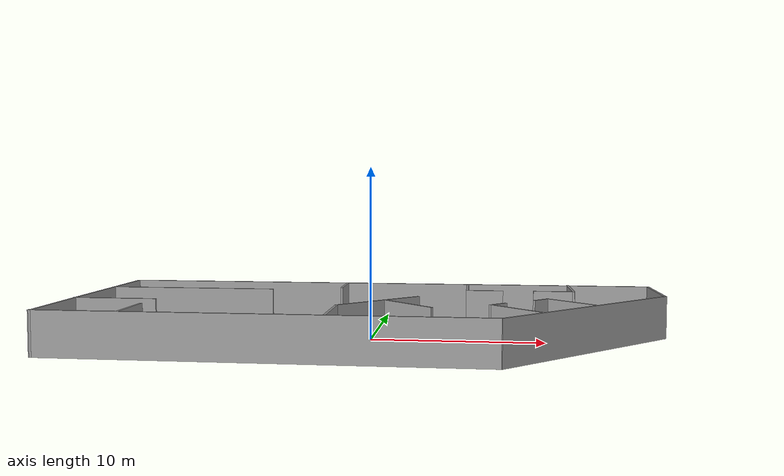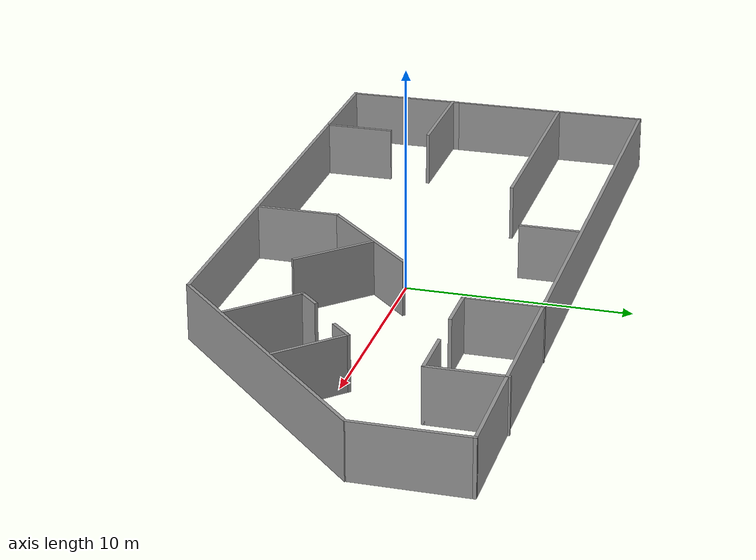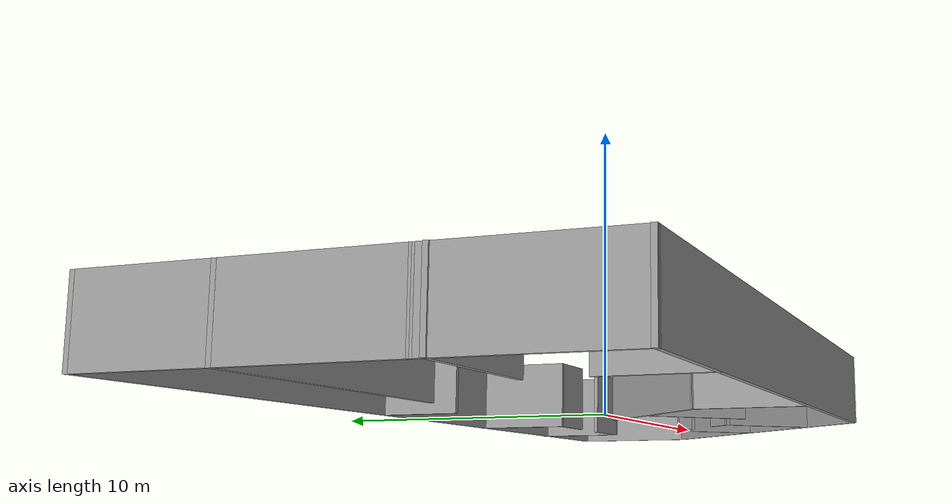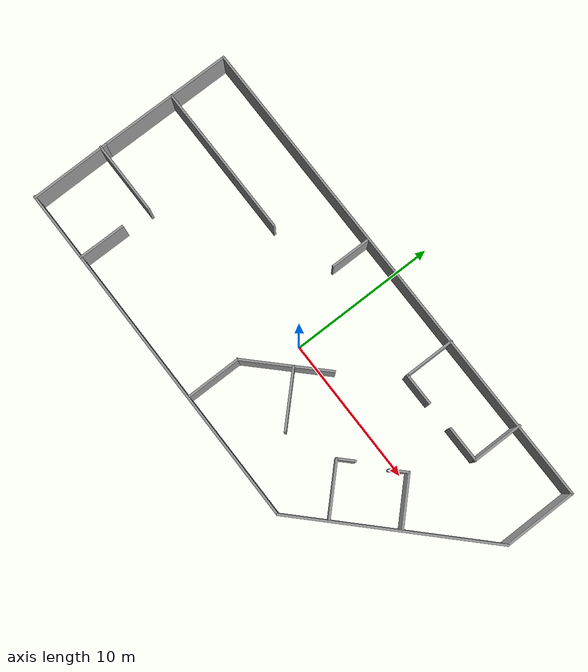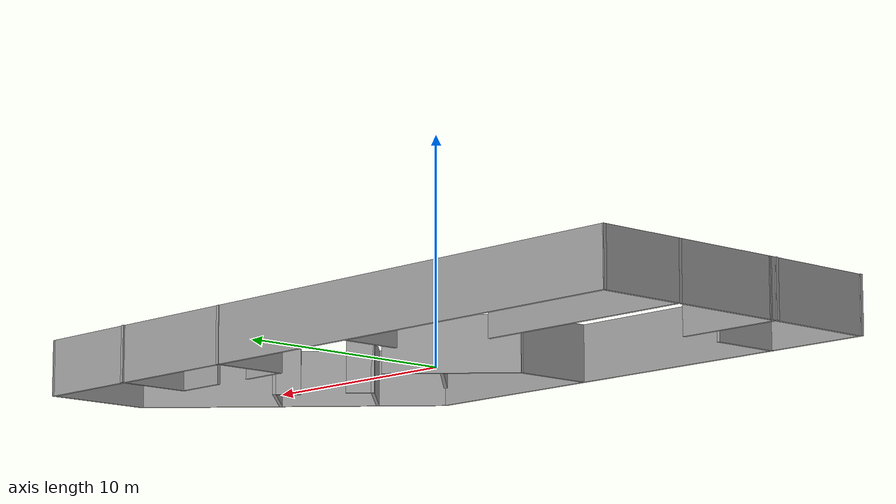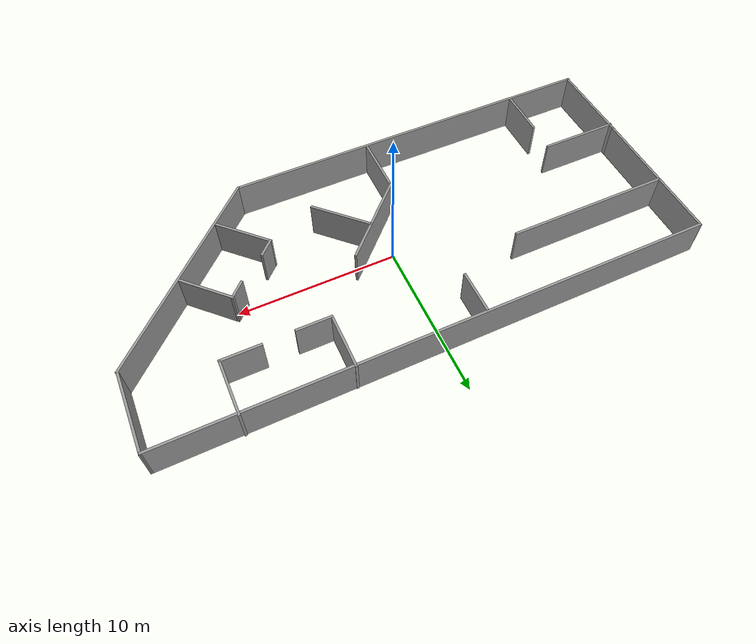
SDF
<?xml version='1.0'?>
<sdf version='1.7'>
  <model name='environment6'>
    <link name='Wall_12'>
      <pose>-17.0013 2.66938 0 0 -0 1.5708</pose>
      <self_collide>0</self_collide>
      <enable_wind>0</enable_wind>
      <kinematic>0</kinematic>
      <visual name='Wall_12_Visual'>
        <pose>0 0 1.25 0 -0 0</pose>
        <geometry>
          <box>
            <size>9.25 0.15 2.5</size>
          </box>
        </geometry>
        <material>
          <script>
            <uri>file://media/materials/scripts/gazebo.material</uri>
            <name>Gazebo/Grey</name>
          </script>
          <ambient>1 1 1 1</ambient>
          <shader type='pixel'/>
        </material>
        <meta>
          <layer>0</layer>
        </meta>
        <transparency>0</transparency>
        <cast_shadows>1</cast_shadows>
      </visual>
      <collision name='Wall_12_Collision'>
        <laser_retro>0</laser_retro>
        <max_contacts>10</max_contacts>
        <pose>0 0 1.25 0 -0 0</pose>
        <geometry>
          <box>
            <size>9.25 0.15 2.5</size>
          </box>
        </geometry>
        <surface>
          <friction>
            <ode>
              <mu>1</mu>
              <mu2>1</mu2>
              <fdir1>0 0 0</fdir1>
              <slip1>0</slip1>
              <slip2>0</slip2>
            </ode>
            <torsional>
              <coefficient>1</coefficient>
              <patch_radius>0</patch_radius>
              <surface_radius>0</surface_radius>
              <use_patch_radius>1</use_patch_radius>
              <ode>
                <slip>0</slip>
              </ode>
            </torsional>
          </friction>
          <bounce>
            <restitution_coefficient>0</restitution_coefficient>
            <threshold>1e+06</threshold>
          </bounce>
          <contact>
            <collide_without_contact>0</collide_without_contact>
            <collide_without_contact_bitmask>1</collide_without_contact_bitmask>
            <collide_bitmask>1</collide_bitmask>
            <ode>
              <soft_cfm>0</soft_cfm>
              <soft_erp>0.2</soft_erp>
              <kp>1e+13</kp>
              <kd>1</kd>
              <max_vel>0.01</max_vel>
              <min_depth>0</min_depth>
            </ode>
            <bullet>
              <split_impulse>1</split_impulse>
              <split_impulse_penetration_threshold>-0.01</split_impulse_penetration_threshold>
              <soft_cfm>0</soft_cfm>
              <soft_erp>0.2</soft_erp>
              <kp>1e+13</kp>
              <kd>1</kd>
            </bullet>
          </contact>
        </surface>
      </collision>
    </link>
    <link name='Wall_13'>
      <pose>0.008656 7.22771 0 0 -0 0.000489</pose>
      <self_collide>0</self_collide>
      <enable_wind>0</enable_wind>
      <kinematic>0</kinematic>
      <visual name='Wall_13_Visual'>
        <pose>0 0 1.25 0 -0 0</pose>
        <geometry>
          <box>
            <size>34.1707 0.15 2.5</size>
          </box>
        </geometry>
        <material>
          <script>
            <uri>file://media/materials/scripts/gazebo.material</uri>
            <name>Gazebo/Grey</name>
          </script>
          <ambient>1 1 1 1</ambient>
          <shader type='pixel'/>
        </material>
        <meta>
          <layer>0</layer>
        </meta>
        <transparency>0</transparency>
        <cast_shadows>1</cast_shadows>
      </visual>
      <collision name='Wall_13_Collision'>
        <laser_retro>0</laser_retro>
        <max_contacts>10</max_contacts>
        <pose>0 0 1.25 0 -0 0</pose>
        <geometry>
          <box>
            <size>34.1707 0.15 2.5</size>
          </box>
        </geometry>
        <surface>
          <friction>
            <ode>
              <mu>1</mu>
              <mu2>1</mu2>
              <fdir1>0 0 0</fdir1>
              <slip1>0</slip1>
              <slip2>0</slip2>
            </ode>
            <torsional>
              <coefficient>1</coefficient>
              <patch_radius>0</patch_radius>
              <surface_radius>0</surface_radius>
              <use_patch_radius>1</use_patch_radius>
              <ode>
                <slip>0</slip>
              </ode>
            </torsional>
          </friction>
          <bounce>
            <restitution_coefficient>0</restitution_coefficient>
            <threshold>1e+06</threshold>
          </bounce>
          <contact>
            <collide_without_contact>0</collide_without_contact>
            <collide_without_contact_bitmask>1</collide_without_contact_bitmask>
            <collide_bitmask>1</collide_bitmask>
            <ode>
              <soft_cfm>0</soft_cfm>
              <soft_erp>0.2</soft_erp>
              <kp>1e+13</kp>
              <kd>1</kd>
              <max_vel>0.01</max_vel>
              <min_depth>0</min_depth>
            </ode>
            <bullet>
              <split_impulse>1</split_impulse>
              <split_impulse_penetration_threshold>-0.01</split_impulse_penetration_threshold>
              <soft_cfm>0</soft_cfm>
              <soft_erp>0.2</soft_erp>
              <kp>1e+13</kp>
              <kd>1</kd>
            </bullet>
          </contact>
        </surface>
      </collision>
    </link>
    <link name='Wall_15'>
      <pose>-14.6246 -2.23152 0 0 -0 0</pose>
      <self_collide>0</self_collide>
      <enable_wind>0</enable_wind>
      <kinematic>0</kinematic>
      <visual name='Wall_15_Visual'>
        <pose>0 0 1.25 0 -0 0</pose>
        <geometry>
          <box>
            <size>5 0.15 2.5</size>
          </box>
        </geometry>
        <material>
          <script>
            <uri>file://media/materials/scripts/gazebo.material</uri>
            <name>Gazebo/Grey</name>
          </script>
          <ambient>1 1 1 1</ambient>
          <shader type='pixel'/>
        </material>
        <meta>
          <layer>0</layer>
        </meta>
        <transparency>0</transparency>
        <cast_shadows>1</cast_shadows>
      </visual>
      <collision name='Wall_15_Collision'>
        <laser_retro>0</laser_retro>
        <max_contacts>10</max_contacts>
        <pose>0 0 1.25 0 -0 0</pose>
        <geometry>
          <box>
            <size>5 0.15 2.5</size>
          </box>
        </geometry>
        <surface>
          <friction>
            <ode>
              <mu>1</mu>
              <mu2>1</mu2>
              <fdir1>0 0 0</fdir1>
              <slip1>0</slip1>
              <slip2>0</slip2>
            </ode>
            <torsional>
              <coefficient>1</coefficient>
              <patch_radius>0</patch_radius>
              <surface_radius>0</surface_radius>
              <use_patch_radius>1</use_patch_radius>
              <ode>
                <slip>0</slip>
              </ode>
            </torsional>
          </friction>
          <bounce>
            <restitution_coefficient>0</restitution_coefficient>
            <threshold>1e+06</threshold>
          </bounce>
          <contact>
            <collide_without_contact>0</collide_without_contact>
            <collide_without_contact_bitmask>1</collide_without_contact_bitmask>
            <collide_bitmask>1</collide_bitmask>
            <ode>
              <soft_cfm>0</soft_cfm>
              <soft_erp>0.2</soft_erp>
              <kp>1e+13</kp>
              <kd>1</kd>
              <max_vel>0.01</max_vel>
              <min_depth>0</min_depth>
            </ode>
            <bullet>
              <split_impulse>1</split_impulse>
              <split_impulse_penetration_threshold>-0.01</split_impulse_penetration_threshold>
              <soft_cfm>0</soft_cfm>
              <soft_erp>0.2</soft_erp>
              <kp>1e+13</kp>
              <kd>1</kd>
            </bullet>
          </contact>
        </surface>
      </collision>
    </link>
    <link name='Wall_18'>
      <pose>-12.2496 -5.72152 0 0 -0 1.5708</pose>
      <self_collide>0</self_collide>
      <enable_wind>0</enable_wind>
      <kinematic>0</kinematic>
      <visual name='Wall_18_Visual'>
        <pose>0 0 1.25 0 -0 0</pose>
        <geometry>
          <box>
            <size>3.25 0.15 2.5</size>
          </box>
        </geometry>
        <material>
          <script>
            <uri>file://media/materials/scripts/gazebo.material</uri>
            <name>Gazebo/Grey</name>
          </script>
          <ambient>1 1 1 1</ambient>
          <shader type='pixel'/>
        </material>
        <meta>
          <layer>0</layer>
        </meta>
        <transparency>0</transparency>
        <cast_shadows>1</cast_shadows>
      </visual>
      <collision name='Wall_18_Collision'>
        <laser_retro>0</laser_retro>
        <max_contacts>10</max_contacts>
        <pose>0 0 1.25 0 -0 0</pose>
        <geometry>
          <box>
            <size>3.25 0.15 2.5</size>
          </box>
        </geometry>
        <surface>
          <friction>
            <ode>
              <mu>1</mu>
              <mu2>1</mu2>
              <fdir1>0 0 0</fdir1>
              <slip1>0</slip1>
              <slip2>0</slip2>
            </ode>
            <torsional>
              <coefficient>1</coefficient>
              <patch_radius>0</patch_radius>
              <surface_radius>0</surface_radius>
              <use_patch_radius>1</use_patch_radius>
              <ode>
                <slip>0</slip>
              </ode>
            </torsional>
          </friction>
          <bounce>
            <restitution_coefficient>0</restitution_coefficient>
            <threshold>1e+06</threshold>
          </bounce>
          <contact>
            <collide_without_contact>0</collide_without_contact>
            <collide_without_contact_bitmask>1</collide_without_contact_bitmask>
            <collide_bitmask>1</collide_bitmask>
            <ode>
              <soft_cfm>0</soft_cfm>
              <soft_erp>0.2</soft_erp>
              <kp>1e+13</kp>
              <kd>1</kd>
              <max_vel>0.01</max_vel>
              <min_depth>0</min_depth>
            </ode>
            <bullet>
              <split_impulse>1</split_impulse>
              <split_impulse_penetration_threshold>-0.01</split_impulse_penetration_threshold>
              <soft_cfm>0</soft_cfm>
              <soft_erp>0.2</soft_erp>
              <kp>1e+13</kp>
              <kd>1</kd>
            </bullet>
          </contact>
        </surface>
      </collision>
    </link>
    <link name='Wall_20'>
      <pose>-11.8269 3.17824 0 0 -0 0</pose>
      <self_collide>0</self_collide>
      <enable_wind>0</enable_wind>
      <kinematic>0</kinematic>
      <visual name='Wall_20_Visual'>
        <pose>0 0 1.25 0 -0 0</pose>
        <geometry>
          <box>
            <size>10.5 0.15 2.5</size>
          </box>
        </geometry>
        <material>
          <script>
            <uri>file://media/materials/scripts/gazebo.material</uri>
            <name>Gazebo/Grey</name>
          </script>
          <ambient>1 1 1 1</ambient>
          <shader type='pixel'/>
        </material>
        <meta>
          <layer>0</layer>
        </meta>
        <transparency>0</transparency>
        <cast_shadows>1</cast_shadows>
      </visual>
      <collision name='Wall_20_Collision'>
        <laser_retro>0</laser_retro>
        <max_contacts>10</max_contacts>
        <pose>0 0 1.25 0 -0 0</pose>
        <geometry>
          <box>
            <size>10.5 0.15 2.5</size>
          </box>
        </geometry>
        <surface>
          <friction>
            <ode>
              <mu>1</mu>
              <mu2>1</mu2>
              <fdir1>0 0 0</fdir1>
              <slip1>0</slip1>
              <slip2>0</slip2>
            </ode>
            <torsional>
              <coefficient>1</coefficient>
              <patch_radius>0</patch_radius>
              <surface_radius>0</surface_radius>
              <use_patch_radius>1</use_patch_radius>
              <ode>
                <slip>0</slip>
              </ode>
            </torsional>
          </friction>
          <bounce>
            <restitution_coefficient>0</restitution_coefficient>
            <threshold>1e+06</threshold>
          </bounce>
          <contact>
            <collide_without_contact>0</collide_without_contact>
            <collide_without_contact_bitmask>1</collide_without_contact_bitmask>
            <collide_bitmask>1</collide_bitmask>
            <ode>
              <soft_cfm>0</soft_cfm>
              <soft_erp>0.2</soft_erp>
              <kp>1e+13</kp>
              <kd>1</kd>
              <max_vel>0.01</max_vel>
              <min_depth>0</min_depth>
            </ode>
            <bullet>
              <split_impulse>1</split_impulse>
              <split_impulse_penetration_threshold>-0.01</split_impulse_penetration_threshold>
              <soft_cfm>0</soft_cfm>
              <soft_erp>0.2</soft_erp>
              <kp>1e+13</kp>
              <kd>1</kd>
            </bullet>
          </contact>
        </surface>
      </collision>
    </link>
    <link name='Wall_24'>
      <pose>-2.43231 5.82806 0 0 -0 1.5708</pose>
      <self_collide>0</self_collide>
      <enable_wind>0</enable_wind>
      <kinematic>0</kinematic>
      <visual name='Wall_24_Visual'>
        <pose>0 0 1.25 0 -0 0</pose>
        <geometry>
          <box>
            <size>2.75 0.15 2.5</size>
          </box>
        </geometry>
        <material>
          <script>
            <uri>file://media/materials/scripts/gazebo.material</uri>
            <name>Gazebo/Grey</name>
          </script>
          <ambient>1 1 1 1</ambient>
          <shader type='pixel'/>
        </material>
        <meta>
          <layer>0</layer>
        </meta>
        <transparency>0</transparency>
        <cast_shadows>1</cast_shadows>
      </visual>
      <collision name='Wall_24_Collision'>
        <laser_retro>0</laser_retro>
        <max_contacts>10</max_contacts>
        <pose>0 0 1.25 0 -0 0</pose>
        <geometry>
          <box>
            <size>2.75 0.15 2.5</size>
          </box>
        </geometry>
        <surface>
          <friction>
            <ode>
              <mu>1</mu>
              <mu2>1</mu2>
              <fdir1>0 0 0</fdir1>
              <slip1>0</slip1>
              <slip2>0</slip2>
            </ode>
            <torsional>
              <coefficient>1</coefficient>
              <patch_radius>0</patch_radius>
              <surface_radius>0</surface_radius>
              <use_patch_radius>1</use_patch_radius>
              <ode>
                <slip>0</slip>
              </ode>
            </torsional>
          </friction>
          <bounce>
            <restitution_coefficient>0</restitution_coefficient>
            <threshold>1e+06</threshold>
          </bounce>
          <contact>
            <collide_without_contact>0</collide_without_contact>
            <collide_without_contact_bitmask>1</collide_without_contact_bitmask>
            <collide_bitmask>1</collide_bitmask>
            <ode>
              <soft_cfm>0</soft_cfm>
              <soft_erp>0.2</soft_erp>
              <kp>1e+13</kp>
              <kd>1</kd>
              <max_vel>0.01</max_vel>
              <min_depth>0</min_depth>
            </ode>
            <bullet>
              <split_impulse>1</split_impulse>
              <split_impulse_penetration_threshold>-0.01</split_impulse_penetration_threshold>
              <soft_cfm>0</soft_cfm>
              <soft_erp>0.2</soft_erp>
              <kp>1e+13</kp>
              <kd>1</kd>
            </bullet>
          </contact>
        </surface>
      </collision>
    </link>
    <link name='Wall_3'>
      <pose>-16.9747 -4.58222 0 0 -0 1.58064</pose>
      <self_collide>0</self_collide>
      <enable_wind>0</enable_wind>
      <kinematic>0</kinematic>
      <visual name='Wall_3_Visual'>
        <pose>0 0 1.25 0 -0 0</pose>
        <geometry>
          <box>
            <size>5.55425 0.15 2.5</size>
          </box>
        </geometry>
        <material>
          <script>
            <uri>file://media/materials/scripts/gazebo.material</uri>
            <name>Gazebo/Grey</name>
          </script>
          <ambient>1 1 1 1</ambient>
          <shader type='pixel'/>
        </material>
        <meta>
          <layer>0</layer>
        </meta>
        <transparency>0</transparency>
        <cast_shadows>1</cast_shadows>
      </visual>
      <collision name='Wall_3_Collision'>
        <laser_retro>0</laser_retro>
        <max_contacts>10</max_contacts>
        <pose>0 0 1.25 0 -0 0</pose>
        <geometry>
          <box>
            <size>5.55425 0.15 2.5</size>
          </box>
        </geometry>
        <surface>
          <friction>
            <ode>
              <mu>1</mu>
              <mu2>1</mu2>
              <fdir1>0 0 0</fdir1>
              <slip1>0</slip1>
              <slip2>0</slip2>
            </ode>
            <torsional>
              <coefficient>1</coefficient>
              <patch_radius>0</patch_radius>
              <surface_radius>0</surface_radius>
              <use_patch_radius>1</use_patch_radius>
              <ode>
                <slip>0</slip>
              </ode>
            </torsional>
          </friction>
          <bounce>
            <restitution_coefficient>0</restitution_coefficient>
            <threshold>1e+06</threshold>
          </bounce>
          <contact>
            <collide_without_contact>0</collide_without_contact>
            <collide_without_contact_bitmask>1</collide_without_contact_bitmask>
            <collide_bitmask>1</collide_bitmask>
            <ode>
              <soft_cfm>0</soft_cfm>
              <soft_erp>0.2</soft_erp>
              <kp>1e+13</kp>
              <kd>1</kd>
              <max_vel>0.01</max_vel>
              <min_depth>0</min_depth>
            </ode>
            <bullet>
              <split_impulse>1</split_impulse>
              <split_impulse_penetration_threshold>-0.01</split_impulse_penetration_threshold>
              <soft_cfm>0</soft_cfm>
              <soft_erp>0.2</soft_erp>
              <kp>1e+13</kp>
              <kd>1</kd>
            </bullet>
          </contact>
        </surface>
      </collision>
    </link>
    <link name='Wall_39'>
      <pose>-1.46686 -5.33781 0 0 -0 1.5708</pose>
      <self_collide>0</self_collide>
      <enable_wind>0</enable_wind>
      <kinematic>0</kinematic>
      <visual name='Wall_39_Visual'>
        <pose>0 0 1.25 0 -0 0</pose>
        <geometry>
          <box>
            <size>3.75 0.15 2.5</size>
          </box>
        </geometry>
        <material>
          <script>
            <uri>file://media/materials/scripts/gazebo.material</uri>
            <name>Gazebo/Grey</name>
          </script>
          <ambient>1 1 1 1</ambient>
          <shader type='pixel'/>
        </material>
        <meta>
          <layer>0</layer>
        </meta>
        <transparency>0</transparency>
        <cast_shadows>1</cast_shadows>
      </visual>
      <collision name='Wall_39_Collision'>
        <laser_retro>0</laser_retro>
        <max_contacts>10</max_contacts>
        <pose>0 0 1.25 0 -0 0</pose>
        <geometry>
          <box>
            <size>3.75 0.15 2.5</size>
          </box>
        </geometry>
        <surface>
          <friction>
            <ode>
              <mu>1</mu>
              <mu2>1</mu2>
              <fdir1>0 0 0</fdir1>
              <slip1>0</slip1>
              <slip2>0</slip2>
            </ode>
            <torsional>
              <coefficient>1</coefficient>
              <patch_radius>0</patch_radius>
              <surface_radius>0</surface_radius>
              <use_patch_radius>1</use_patch_radius>
              <ode>
                <slip>0</slip>
              </ode>
            </torsional>
          </friction>
          <bounce>
            <restitution_coefficient>0</restitution_coefficient>
            <threshold>1e+06</threshold>
          </bounce>
          <contact>
            <collide_without_contact>0</collide_without_contact>
            <collide_without_contact_bitmask>1</collide_without_contact_bitmask>
            <collide_bitmask>1</collide_bitmask>
            <ode>
              <soft_cfm>0</soft_cfm>
              <soft_erp>0.2</soft_erp>
              <kp>1e+13</kp>
              <kd>1</kd>
              <max_vel>0.01</max_vel>
              <min_depth>0</min_depth>
            </ode>
            <bullet>
              <split_impulse>1</split_impulse>
              <split_impulse_penetration_threshold>-0.01</split_impulse_penetration_threshold>
              <soft_cfm>0</soft_cfm>
              <soft_erp>0.2</soft_erp>
              <kp>1e+13</kp>
              <kd>1</kd>
            </bullet>
          </contact>
        </surface>
      </collision>
    </link>
    <link name='Wall_40'>
      <pose>0.601431 -1.46952 0 0 -0 0.785398</pose>
      <self_collide>0</self_collide>
      <enable_wind>0</enable_wind>
      <kinematic>0</kinematic>
      <visual name='Wall_40_Visual'>
        <pose>0 0 1.25 0 -0 0</pose>
        <geometry>
          <box>
            <size>6 0.15 2.5</size>
          </box>
        </geometry>
        <material>
          <script>
            <uri>file://media/materials/scripts/gazebo.material</uri>
            <name>Gazebo/Grey</name>
          </script>
          <ambient>1 1 1 1</ambient>
          <shader type='pixel'/>
        </material>
        <meta>
          <layer>0</layer>
        </meta>
        <transparency>0</transparency>
        <cast_shadows>1</cast_shadows>
      </visual>
      <collision name='Wall_40_Collision'>
        <laser_retro>0</laser_retro>
        <max_contacts>10</max_contacts>
        <pose>0 0 1.25 0 -0 0</pose>
        <geometry>
          <box>
            <size>6 0.15 2.5</size>
          </box>
        </geometry>
        <surface>
          <friction>
            <ode>
              <mu>1</mu>
              <mu2>1</mu2>
              <fdir1>0 0 0</fdir1>
              <slip1>0</slip1>
              <slip2>0</slip2>
            </ode>
            <torsional>
              <coefficient>1</coefficient>
              <patch_radius>0</patch_radius>
              <surface_radius>0</surface_radius>
              <use_patch_radius>1</use_patch_radius>
              <ode>
                <slip>0</slip>
              </ode>
            </torsional>
          </friction>
          <bounce>
            <restitution_coefficient>0</restitution_coefficient>
            <threshold>1e+06</threshold>
          </bounce>
          <contact>
            <collide_without_contact>0</collide_without_contact>
            <collide_without_contact_bitmask>1</collide_without_contact_bitmask>
            <collide_bitmask>1</collide_bitmask>
            <ode>
              <soft_cfm>0</soft_cfm>
              <soft_erp>0.2</soft_erp>
              <kp>1e+13</kp>
              <kd>1</kd>
              <max_vel>0.01</max_vel>
              <min_depth>0</min_depth>
            </ode>
            <bullet>
              <split_impulse>1</split_impulse>
              <split_impulse_penetration_threshold>-0.01</split_impulse_penetration_threshold>
              <soft_cfm>0</soft_cfm>
              <soft_erp>0.2</soft_erp>
              <kp>1e+13</kp>
              <kd>1</kd>
            </bullet>
          </contact>
        </surface>
      </collision>
    </link>
    <link name='Wall_42'>
      <pose>2.30795 -2.54537 0 0 0 -0.785398</pose>
      <self_collide>0</self_collide>
      <enable_wind>0</enable_wind>
      <kinematic>0</kinematic>
      <visual name='Wall_42_Visual'>
        <pose>0 0 1.25 0 -0 0</pose>
        <geometry>
          <box>
            <size>4 0.15 2.5</size>
          </box>
        </geometry>
        <material>
          <script>
            <uri>file://media/materials/scripts/gazebo.material</uri>
            <name>Gazebo/Grey</name>
          </script>
          <ambient>1 1 1 1</ambient>
          <shader type='pixel'/>
        </material>
        <meta>
          <layer>0</layer>
        </meta>
        <transparency>0</transparency>
        <cast_shadows>1</cast_shadows>
      </visual>
      <collision name='Wall_42_Collision'>
        <laser_retro>0</laser_retro>
        <max_contacts>10</max_contacts>
        <pose>0 0 1.25 0 -0 0</pose>
        <geometry>
          <box>
            <size>4 0.15 2.5</size>
          </box>
        </geometry>
        <surface>
          <friction>
            <ode>
              <mu>1</mu>
              <mu2>1</mu2>
              <fdir1>0 0 0</fdir1>
              <slip1>0</slip1>
              <slip2>0</slip2>
            </ode>
            <torsional>
              <coefficient>1</coefficient>
              <patch_radius>0</patch_radius>
              <surface_radius>0</surface_radius>
              <use_patch_radius>1</use_patch_radius>
              <ode>
                <slip>0</slip>
              </ode>
            </torsional>
          </friction>
          <bounce>
            <restitution_coefficient>0</restitution_coefficient>
            <threshold>1e+06</threshold>
          </bounce>
          <contact>
            <collide_without_contact>0</collide_without_contact>
            <collide_without_contact_bitmask>1</collide_without_contact_bitmask>
            <collide_bitmask>1</collide_bitmask>
            <ode>
              <soft_cfm>0</soft_cfm>
              <soft_erp>0.2</soft_erp>
              <kp>1e+13</kp>
              <kd>1</kd>
              <max_vel>0.01</max_vel>
              <min_depth>0</min_depth>
            </ode>
            <bullet>
              <split_impulse>1</split_impulse>
              <split_impulse_penetration_threshold>-0.01</split_impulse_penetration_threshold>
              <soft_cfm>0</soft_cfm>
              <soft_erp>0.2</soft_erp>
              <kp>1e+13</kp>
              <kd>1</kd>
            </bullet>
          </contact>
        </surface>
      </collision>
    </link>
    <link name='Wall_44'>
      <pose>5.53267 5.58851 0 0 0 -1.5708</pose>
      <self_collide>0</self_collide>
      <enable_wind>0</enable_wind>
      <kinematic>0</kinematic>
      <visual name='Wall_44_Visual'>
        <pose>0 0 1.25 0 -0 0</pose>
        <geometry>
          <box>
            <size>3.5 0.15 2.5</size>
          </box>
        </geometry>
        <material>
          <script>
            <uri>file://media/materials/scripts/gazebo.material</uri>
            <name>Gazebo/Grey</name>
          </script>
          <ambient>1 1 1 1</ambient>
          <shader type='pixel'/>
        </material>
        <meta>
          <layer>0</layer>
        </meta>
        <transparency>0</transparency>
        <cast_shadows>1</cast_shadows>
      </visual>
      <collision name='Wall_44_Collision'>
        <laser_retro>0</laser_retro>
        <max_contacts>10</max_contacts>
        <pose>0 0 1.25 0 -0 0</pose>
        <geometry>
          <box>
            <size>3.5 0.15 2.5</size>
          </box>
        </geometry>
        <surface>
          <friction>
            <ode>
              <mu>1</mu>
              <mu2>1</mu2>
              <fdir1>0 0 0</fdir1>
              <slip1>0</slip1>
              <slip2>0</slip2>
            </ode>
            <torsional>
              <coefficient>1</coefficient>
              <patch_radius>0</patch_radius>
              <surface_radius>0</surface_radius>
              <use_patch_radius>1</use_patch_radius>
              <ode>
                <slip>0</slip>
              </ode>
            </torsional>
          </friction>
          <bounce>
            <restitution_coefficient>0</restitution_coefficient>
            <threshold>1e+06</threshold>
          </bounce>
          <contact>
            <collide_without_contact>0</collide_without_contact>
            <collide_without_contact_bitmask>1</collide_without_contact_bitmask>
            <collide_bitmask>1</collide_bitmask>
            <ode>
              <soft_cfm>0</soft_cfm>
              <soft_erp>0.2</soft_erp>
              <kp>1e+13</kp>
              <kd>1</kd>
              <max_vel>0.01</max_vel>
              <min_depth>0</min_depth>
            </ode>
            <bullet>
              <split_impulse>1</split_impulse>
              <split_impulse_penetration_threshold>-0.01</split_impulse_penetration_threshold>
              <soft_cfm>0</soft_cfm>
              <soft_erp>0.2</soft_erp>
              <kp>1e+13</kp>
              <kd>1</kd>
            </bullet>
          </contact>
        </surface>
      </collision>
    </link>
    <link name='Wall_45'>
      <pose>6.58267 3.91351 0 0 -0 0</pose>
      <self_collide>0</self_collide>
      <enable_wind>0</enable_wind>
      <kinematic>0</kinematic>
      <visual name='Wall_45_Visual'>
        <pose>0 0 1.25 0 -0 0</pose>
        <geometry>
          <box>
            <size>2.25 0.15 2.5</size>
          </box>
        </geometry>
        <material>
          <script>
            <uri>file://media/materials/scripts/gazebo.material</uri>
            <name>Gazebo/Grey</name>
          </script>
          <ambient>1 1 1 1</ambient>
          <shader type='pixel'/>
        </material>
        <meta>
          <layer>0</layer>
        </meta>
        <transparency>0</transparency>
        <cast_shadows>1</cast_shadows>
      </visual>
      <collision name='Wall_45_Collision'>
        <laser_retro>0</laser_retro>
        <max_contacts>10</max_contacts>
        <pose>0 0 1.25 0 -0 0</pose>
        <geometry>
          <box>
            <size>2.25 0.15 2.5</size>
          </box>
        </geometry>
        <surface>
          <friction>
            <ode>
              <mu>1</mu>
              <mu2>1</mu2>
              <fdir1>0 0 0</fdir1>
              <slip1>0</slip1>
              <slip2>0</slip2>
            </ode>
            <torsional>
              <coefficient>1</coefficient>
              <patch_radius>0</patch_radius>
              <surface_radius>0</surface_radius>
              <use_patch_radius>1</use_patch_radius>
              <ode>
                <slip>0</slip>
              </ode>
            </torsional>
          </friction>
          <bounce>
            <restitution_coefficient>0</restitution_coefficient>
            <threshold>1e+06</threshold>
          </bounce>
          <contact>
            <collide_without_contact>0</collide_without_contact>
            <collide_without_contact_bitmask>1</collide_without_contact_bitmask>
            <collide_bitmask>1</collide_bitmask>
            <ode>
              <soft_cfm>0</soft_cfm>
              <soft_erp>0.2</soft_erp>
              <kp>1e+13</kp>
              <kd>1</kd>
              <max_vel>0.01</max_vel>
              <min_depth>0</min_depth>
            </ode>
            <bullet>
              <split_impulse>1</split_impulse>
              <split_impulse_penetration_threshold>-0.01</split_impulse_penetration_threshold>
              <soft_cfm>0</soft_cfm>
              <soft_erp>0.2</soft_erp>
              <kp>1e+13</kp>
              <kd>1</kd>
            </bullet>
          </contact>
        </surface>
      </collision>
    </link>
    <link name='Wall_48'>
      <pose>10.8108 3.96488 0 0 -0 0</pose>
      <self_collide>0</self_collide>
      <enable_wind>0</enable_wind>
      <kinematic>0</kinematic>
      <visual name='Wall_48_Visual'>
        <pose>0 0 1.25 0 -0 0</pose>
        <geometry>
          <box>
            <size>2.5 0.15 2.5</size>
          </box>
        </geometry>
        <material>
          <script>
            <uri>file://media/materials/scripts/gazebo.material</uri>
            <name>Gazebo/Grey</name>
          </script>
          <ambient>1 1 1 1</ambient>
          <shader type='pixel'/>
        </material>
        <meta>
          <layer>0</layer>
        </meta>
        <transparency>0</transparency>
        <cast_shadows>1</cast_shadows>
      </visual>
      <collision name='Wall_48_Collision'>
        <laser_retro>0</laser_retro>
        <max_contacts>10</max_contacts>
        <pose>0 0 1.25 0 -0 0</pose>
        <geometry>
          <box>
            <size>2.5 0.15 2.5</size>
          </box>
        </geometry>
        <surface>
          <friction>
            <ode>
              <mu>1</mu>
              <mu2>1</mu2>
              <fdir1>0 0 0</fdir1>
              <slip1>0</slip1>
              <slip2>0</slip2>
            </ode>
            <torsional>
              <coefficient>1</coefficient>
              <patch_radius>0</patch_radius>
              <surface_radius>0</surface_radius>
              <use_patch_radius>1</use_patch_radius>
              <ode>
                <slip>0</slip>
              </ode>
            </torsional>
          </friction>
          <bounce>
            <restitution_coefficient>0</restitution_coefficient>
            <threshold>1e+06</threshold>
          </bounce>
          <contact>
            <collide_without_contact>0</collide_without_contact>
            <collide_without_contact_bitmask>1</collide_without_contact_bitmask>
            <collide_bitmask>1</collide_bitmask>
            <ode>
              <soft_cfm>0</soft_cfm>
              <soft_erp>0.2</soft_erp>
              <kp>1e+13</kp>
              <kd>1</kd>
              <max_vel>0.01</max_vel>
              <min_depth>0</min_depth>
            </ode>
            <bullet>
              <split_impulse>1</split_impulse>
              <split_impulse_penetration_threshold>-0.01</split_impulse_penetration_threshold>
              <soft_cfm>0</soft_cfm>
              <soft_erp>0.2</soft_erp>
              <kp>1e+13</kp>
              <kd>1</kd>
            </bullet>
          </contact>
        </surface>
      </collision>
    </link>
    <link name='Wall_49'>
      <pose>11.9858 5.63988 0 0 -0 1.5708</pose>
      <self_collide>0</self_collide>
      <enable_wind>0</enable_wind>
      <kinematic>0</kinematic>
      <visual name='Wall_49_Visual'>
        <pose>0 0 1.25 0 -0 0</pose>
        <geometry>
          <box>
            <size>3.5 0.15 2.5</size>
          </box>
        </geometry>
        <material>
          <script>
            <uri>file://media/materials/scripts/gazebo.material</uri>
            <name>Gazebo/Grey</name>
          </script>
          <ambient>1 1 1 1</ambient>
          <shader type='pixel'/>
        </material>
        <meta>
          <layer>0</layer>
        </meta>
        <transparency>0</transparency>
        <cast_shadows>1</cast_shadows>
      </visual>
      <collision name='Wall_49_Collision'>
        <laser_retro>0</laser_retro>
        <max_contacts>10</max_contacts>
        <pose>0 0 1.25 0 -0 0</pose>
        <geometry>
          <box>
            <size>3.5 0.15 2.5</size>
          </box>
        </geometry>
        <surface>
          <friction>
            <ode>
              <mu>1</mu>
              <mu2>1</mu2>
              <fdir1>0 0 0</fdir1>
              <slip1>0</slip1>
              <slip2>0</slip2>
            </ode>
            <torsional>
              <coefficient>1</coefficient>
              <patch_radius>0</patch_radius>
              <surface_radius>0</surface_radius>
              <use_patch_radius>1</use_patch_radius>
              <ode>
                <slip>0</slip>
              </ode>
            </torsional>
          </friction>
          <bounce>
            <restitution_coefficient>0</restitution_coefficient>
            <threshold>1e+06</threshold>
          </bounce>
          <contact>
            <collide_without_contact>0</collide_without_contact>
            <collide_without_contact_bitmask>1</collide_without_contact_bitmask>
            <collide_bitmask>1</collide_bitmask>
            <ode>
              <soft_cfm>0</soft_cfm>
              <soft_erp>0.2</soft_erp>
              <kp>1e+13</kp>
              <kd>1</kd>
              <max_vel>0.01</max_vel>
              <min_depth>0</min_depth>
            </ode>
            <bullet>
              <split_impulse>1</split_impulse>
              <split_impulse_penetration_threshold>-0.01</split_impulse_penetration_threshold>
              <soft_cfm>0</soft_cfm>
              <soft_erp>0.2</soft_erp>
              <kp>1e+13</kp>
              <kd>1</kd>
            </bullet>
          </contact>
        </surface>
      </collision>
    </link>
    <link name='Wall_53'>
      <pose>8.12168 -3.7732 0 0 -0 2.35619</pose>
      <self_collide>0</self_collide>
      <enable_wind>0</enable_wind>
      <kinematic>0</kinematic>
      <visual name='Wall_53_Visual'>
        <pose>0 0 1.25 0 -0 0</pose>
        <geometry>
          <box>
            <size>3.75 0.15 2.5</size>
          </box>
        </geometry>
        <material>
          <script>
            <uri>file://media/materials/scripts/gazebo.material</uri>
            <name>Gazebo/Grey</name>
          </script>
          <ambient>1 1 1 1</ambient>
          <shader type='pixel'/>
        </material>
        <meta>
          <layer>0</layer>
        </meta>
        <transparency>0</transparency>
        <cast_shadows>1</cast_shadows>
      </visual>
      <collision name='Wall_53_Collision'>
        <laser_retro>0</laser_retro>
        <max_contacts>10</max_contacts>
        <pose>0 0 1.25 0 -0 0</pose>
        <geometry>
          <box>
            <size>3.75 0.15 2.5</size>
          </box>
        </geometry>
        <surface>
          <friction>
            <ode>
              <mu>1</mu>
              <mu2>1</mu2>
              <fdir1>0 0 0</fdir1>
              <slip1>0</slip1>
              <slip2>0</slip2>
            </ode>
            <torsional>
              <coefficient>1</coefficient>
              <patch_radius>0</patch_radius>
              <surface_radius>0</surface_radius>
              <use_patch_radius>1</use_patch_radius>
              <ode>
                <slip>0</slip>
              </ode>
            </torsional>
          </friction>
          <bounce>
            <restitution_coefficient>0</restitution_coefficient>
            <threshold>1e+06</threshold>
          </bounce>
          <contact>
            <collide_without_contact>0</collide_without_contact>
            <collide_without_contact_bitmask>1</collide_without_contact_bitmask>
            <collide_bitmask>1</collide_bitmask>
            <ode>
              <soft_cfm>0</soft_cfm>
              <soft_erp>0.2</soft_erp>
              <kp>1e+13</kp>
              <kd>1</kd>
              <max_vel>0.01</max_vel>
              <min_depth>0</min_depth>
            </ode>
            <bullet>
              <split_impulse>1</split_impulse>
              <split_impulse_penetration_threshold>-0.01</split_impulse_penetration_threshold>
              <soft_cfm>0</soft_cfm>
              <soft_erp>0.2</soft_erp>
              <kp>1e+13</kp>
              <kd>1</kd>
            </bullet>
          </contact>
        </surface>
      </collision>
    </link>
    <link name='Wall_54'>
      <pose>7.2378 -2.1115 0 0 -0 0.785398</pose>
      <self_collide>0</self_collide>
      <enable_wind>0</enable_wind>
      <kinematic>0</kinematic>
      <visual name='Wall_54_Visual'>
        <pose>0 0 1.25 0 -0 0</pose>
        <geometry>
          <box>
            <size>1.25 0.15 2.5</size>
          </box>
        </geometry>
        <material>
          <script>
            <uri>file://media/materials/scripts/gazebo.material</uri>
            <name>Gazebo/Grey</name>
          </script>
          <ambient>1 1 1 1</ambient>
          <shader type='pixel'/>
        </material>
        <meta>
          <layer>0</layer>
        </meta>
        <transparency>0</transparency>
        <cast_shadows>1</cast_shadows>
      </visual>
      <collision name='Wall_54_Collision'>
        <laser_retro>0</laser_retro>
        <max_contacts>10</max_contacts>
        <pose>0 0 1.25 0 -0 0</pose>
        <geometry>
          <box>
            <size>1.25 0.15 2.5</size>
          </box>
        </geometry>
        <surface>
          <friction>
            <ode>
              <mu>1</mu>
              <mu2>1</mu2>
              <fdir1>0 0 0</fdir1>
              <slip1>0</slip1>
              <slip2>0</slip2>
            </ode>
            <torsional>
              <coefficient>1</coefficient>
              <patch_radius>0</patch_radius>
              <surface_radius>0</surface_radius>
              <use_patch_radius>1</use_patch_radius>
              <ode>
                <slip>0</slip>
              </ode>
            </torsional>
          </friction>
          <bounce>
            <restitution_coefficient>0</restitution_coefficient>
            <threshold>1e+06</threshold>
          </bounce>
          <contact>
            <collide_without_contact>0</collide_without_contact>
            <collide_without_contact_bitmask>1</collide_without_contact_bitmask>
            <collide_bitmask>1</collide_bitmask>
            <ode>
              <soft_cfm>0</soft_cfm>
              <soft_erp>0.2</soft_erp>
              <kp>1e+13</kp>
              <kd>1</kd>
              <max_vel>0.01</max_vel>
              <min_depth>0</min_depth>
            </ode>
            <bullet>
              <split_impulse>1</split_impulse>
              <split_impulse_penetration_threshold>-0.01</split_impulse_penetration_threshold>
              <soft_cfm>0</soft_cfm>
              <soft_erp>0.2</soft_erp>
              <kp>1e+13</kp>
              <kd>1</kd>
            </bullet>
          </contact>
        </surface>
      </collision>
    </link>
    <link name='Wall_6'>
      <pose>-4.87947 -7.28382 0 0 -0 0</pose>
      <self_collide>0</self_collide>
      <enable_wind>0</enable_wind>
      <kinematic>0</kinematic>
      <visual name='Wall_6_Visual'>
        <pose>0 0 1.25 0 -0 0</pose>
        <geometry>
          <box>
            <size>24.3936 0.15 2.5</size>
          </box>
        </geometry>
        <material>
          <script>
            <uri>file://media/materials/scripts/gazebo.material</uri>
            <name>Gazebo/Grey</name>
          </script>
          <ambient>1 1 1 1</ambient>
          <shader type='pixel'/>
        </material>
        <meta>
          <layer>0</layer>
        </meta>
        <transparency>0</transparency>
        <cast_shadows>1</cast_shadows>
      </visual>
      <collision name='Wall_6_Collision'>
        <laser_retro>0</laser_retro>
        <max_contacts>10</max_contacts>
        <pose>0 0 1.25 0 -0 0</pose>
        <geometry>
          <box>
            <size>24.3936 0.15 2.5</size>
          </box>
        </geometry>
        <surface>
          <friction>
            <ode>
              <mu>1</mu>
              <mu2>1</mu2>
              <fdir1>0 0 0</fdir1>
              <slip1>0</slip1>
              <slip2>0</slip2>
            </ode>
            <torsional>
              <coefficient>1</coefficient>
              <patch_radius>0</patch_radius>
              <surface_radius>0</surface_radius>
              <use_patch_radius>1</use_patch_radius>
              <ode>
                <slip>0</slip>
              </ode>
            </torsional>
          </friction>
          <bounce>
            <restitution_coefficient>0</restitution_coefficient>
            <threshold>1e+06</threshold>
          </bounce>
          <contact>
            <collide_without_contact>0</collide_without_contact>
            <collide_without_contact_bitmask>1</collide_without_contact_bitmask>
            <collide_bitmask>1</collide_bitmask>
            <ode>
              <soft_cfm>0</soft_cfm>
              <soft_erp>0.2</soft_erp>
              <kp>1e+13</kp>
              <kd>1</kd>
              <max_vel>0.01</max_vel>
              <min_depth>0</min_depth>
            </ode>
            <bullet>
              <split_impulse>1</split_impulse>
              <split_impulse_penetration_threshold>-0.01</split_impulse_penetration_threshold>
              <soft_cfm>0</soft_cfm>
              <soft_erp>0.2</soft_erp>
              <kp>1e+13</kp>
              <kd>1</kd>
            </bullet>
          </contact>
        </surface>
      </collision>
    </link>
    <link name='Wall_7'>
      <pose>12.1571 -2.47549 0 0 -0 0.779897</pose>
      <self_collide>0</self_collide>
      <enable_wind>0</enable_wind>
      <kinematic>0</kinematic>
      <visual name='Wall_7_Visual'>
        <pose>0 0 1.25 0 -0 0</pose>
        <geometry>
          <box>
            <size>13.8254 0.15 2.5</size>
          </box>
        </geometry>
        <material>
          <script>
            <uri>file://media/materials/scripts/gazebo.material</uri>
            <name>Gazebo/Grey</name>
          </script>
          <ambient>1 1 1 1</ambient>
          <shader type='pixel'/>
        </material>
        <meta>
          <layer>0</layer>
        </meta>
        <transparency>0</transparency>
        <cast_shadows>1</cast_shadows>
      </visual>
      <collision name='Wall_7_Collision'>
        <laser_retro>0</laser_retro>
        <max_contacts>10</max_contacts>
        <pose>0 0 1.25 0 -0 0</pose>
        <geometry>
          <box>
            <size>13.8254 0.15 2.5</size>
          </box>
        </geometry>
        <surface>
          <friction>
            <ode>
              <mu>1</mu>
              <mu2>1</mu2>
              <fdir1>0 0 0</fdir1>
              <slip1>0</slip1>
              <slip2>0</slip2>
            </ode>
            <torsional>
              <coefficient>1</coefficient>
              <patch_radius>0</patch_radius>
              <surface_radius>0</surface_radius>
              <use_patch_radius>1</use_patch_radius>
              <ode>
                <slip>0</slip>
              </ode>
            </torsional>
          </friction>
          <bounce>
            <restitution_coefficient>0</restitution_coefficient>
            <threshold>1e+06</threshold>
          </bounce>
          <contact>
            <collide_without_contact>0</collide_without_contact>
            <collide_without_contact_bitmask>1</collide_without_contact_bitmask>
            <collide_bitmask>1</collide_bitmask>
            <ode>
              <soft_cfm>0</soft_cfm>
              <soft_erp>0.2</soft_erp>
              <kp>1e+13</kp>
              <kd>1</kd>
              <max_vel>0.01</max_vel>
              <min_depth>0</min_depth>
            </ode>
            <bullet>
              <split_impulse>1</split_impulse>
              <split_impulse_penetration_threshold>-0.01</split_impulse_penetration_threshold>
              <soft_cfm>0</soft_cfm>
              <soft_erp>0.2</soft_erp>
              <kp>1e+13</kp>
              <kd>1</kd>
            </bullet>
          </contact>
        </surface>
      </collision>
    </link>
    <link name='Wall_8'>
      <pose>17.0186 4.81103 0 0 -0 1.5708</pose>
      <self_collide>0</self_collide>
      <enable_wind>0</enable_wind>
      <kinematic>0</kinematic>
      <visual name='Wall_8_Visual'>
        <pose>0 0 1.25 0 -0 0</pose>
        <geometry>
          <box>
            <size>5 0.15 2.5</size>
          </box>
        </geometry>
        <material>
          <script>
            <uri>file://media/materials/scripts/gazebo.material</uri>
            <name>Gazebo/Grey</name>
          </script>
          <ambient>1 1 1 1</ambient>
          <shader type='pixel'/>
        </material>
        <meta>
          <layer>0</layer>
        </meta>
        <transparency>0</transparency>
        <cast_shadows>1</cast_shadows>
      </visual>
      <collision name='Wall_8_Collision'>
        <laser_retro>0</laser_retro>
        <max_contacts>10</max_contacts>
        <pose>0 0 1.25 0 -0 0</pose>
        <geometry>
          <box>
            <size>5 0.15 2.5</size>
          </box>
        </geometry>
        <surface>
          <friction>
            <ode>
              <mu>1</mu>
              <mu2>1</mu2>
              <fdir1>0 0 0</fdir1>
              <slip1>0</slip1>
              <slip2>0</slip2>
            </ode>
            <torsional>
              <coefficient>1</coefficient>
              <patch_radius>0</patch_radius>
              <surface_radius>0</surface_radius>
              <use_patch_radius>1</use_patch_radius>
              <ode>
                <slip>0</slip>
              </ode>
            </torsional>
          </friction>
          <bounce>
            <restitution_coefficient>0</restitution_coefficient>
            <threshold>1e+06</threshold>
          </bounce>
          <contact>
            <collide_without_contact>0</collide_without_contact>
            <collide_without_contact_bitmask>1</collide_without_contact_bitmask>
            <collide_bitmask>1</collide_bitmask>
            <ode>
              <soft_cfm>0</soft_cfm>
              <soft_erp>0.2</soft_erp>
              <kp>1e+13</kp>
              <kd>1</kd>
              <max_vel>0.01</max_vel>
              <min_depth>0</min_depth>
            </ode>
            <bullet>
              <split_impulse>1</split_impulse>
              <split_impulse_penetration_threshold>-0.01</split_impulse_penetration_threshold>
              <soft_cfm>0</soft_cfm>
              <soft_erp>0.2</soft_erp>
              <kp>1e+13</kp>
              <kd>1</kd>
            </bullet>
          </contact>
        </surface>
      </collision>
    </link>
    <link name='Wall_80'>
      <pose>9.72502 0.010613 0 0 -0 0.785398</pose>
      <self_collide>0</self_collide>
      <enable_wind>0</enable_wind>
      <kinematic>0</kinematic>
      <visual name='Wall_80_Visual'>
        <pose>0 0 1.25 0 -0 0</pose>
        <geometry>
          <box>
            <size>1.25 0.15 2.5</size>
          </box>
        </geometry>
        <material>
          <script>
            <uri>file://media/materials/scripts/gazebo.material</uri>
            <name>Gazebo/Grey</name>
          </script>
          <ambient>1 1 1 1</ambient>
          <shader type='pixel'/>
        </material>
        <meta>
          <layer>0</layer>
        </meta>
        <transparency>0</transparency>
        <cast_shadows>1</cast_shadows>
      </visual>
      <collision name='Wall_80_Collision'>
        <laser_retro>0</laser_retro>
        <max_contacts>10</max_contacts>
        <pose>0 0 1.25 0 -0 0</pose>
        <geometry>
          <box>
            <size>1.25 0.15 2.5</size>
          </box>
        </geometry>
        <surface>
          <friction>
            <ode>
              <mu>1</mu>
              <mu2>1</mu2>
              <fdir1>0 0 0</fdir1>
              <slip1>0</slip1>
              <slip2>0</slip2>
            </ode>
            <torsional>
              <coefficient>1</coefficient>
              <patch_radius>0</patch_radius>
              <surface_radius>0</surface_radius>
              <use_patch_radius>1</use_patch_radius>
              <ode>
                <slip>0</slip>
              </ode>
            </torsional>
          </friction>
          <bounce>
            <restitution_coefficient>0</restitution_coefficient>
            <threshold>1e+06</threshold>
          </bounce>
          <contact>
            <collide_without_contact>0</collide_without_contact>
            <collide_without_contact_bitmask>1</collide_without_contact_bitmask>
            <collide_bitmask>1</collide_bitmask>
            <ode>
              <soft_cfm>0</soft_cfm>
              <soft_erp>0.2</soft_erp>
              <kp>1e+13</kp>
              <kd>1</kd>
              <max_vel>0.01</max_vel>
              <min_depth>0</min_depth>
            </ode>
            <bullet>
              <split_impulse>1</split_impulse>
              <split_impulse_penetration_threshold>-0.01</split_impulse_penetration_threshold>
              <soft_cfm>0</soft_cfm>
              <soft_erp>0.2</soft_erp>
              <kp>1e+13</kp>
              <kd>1</kd>
            </bullet>
          </contact>
        </surface>
      </collision>
    </link>
    <link name='Wall_81'>
      <pose>11.2983 -0.784882 0 0 0 -0.785398</pose>
      <self_collide>0</self_collide>
      <enable_wind>0</enable_wind>
      <kinematic>0</kinematic>
      <visual name='Wall_81_Visual'>
        <pose>0 0 1.25 0 -0 0</pose>
        <geometry>
          <box>
            <size>3.5 0.15 2.5</size>
          </box>
        </geometry>
        <material>
          <script>
            <uri>file://media/materials/scripts/gazebo.material</uri>
            <name>Gazebo/Grey</name>
          </script>
          <ambient>1 1 1 1</ambient>
          <shader type='pixel'/>
        </material>
        <meta>
          <layer>0</layer>
        </meta>
        <transparency>0</transparency>
        <cast_shadows>1</cast_shadows>
      </visual>
      <collision name='Wall_81_Collision'>
        <laser_retro>0</laser_retro>
        <max_contacts>10</max_contacts>
        <pose>0 0 1.25 0 -0 0</pose>
        <geometry>
          <box>
            <size>3.5 0.15 2.5</size>
          </box>
        </geometry>
        <surface>
          <friction>
            <ode>
              <mu>1</mu>
              <mu2>1</mu2>
              <fdir1>0 0 0</fdir1>
              <slip1>0</slip1>
              <slip2>0</slip2>
            </ode>
            <torsional>
              <coefficient>1</coefficient>
              <patch_radius>0</patch_radius>
              <surface_radius>0</surface_radius>
              <use_patch_radius>1</use_patch_radius>
              <ode>
                <slip>0</slip>
              </ode>
            </torsional>
          </friction>
          <bounce>
            <restitution_coefficient>0</restitution_coefficient>
            <threshold>1e+06</threshold>
          </bounce>
          <contact>
            <collide_without_contact>0</collide_without_contact>
            <collide_without_contact_bitmask>1</collide_without_contact_bitmask>
            <collide_bitmask>1</collide_bitmask>
            <ode>
              <soft_cfm>0</soft_cfm>
              <soft_erp>0.2</soft_erp>
              <kp>1e+13</kp>
              <kd>1</kd>
              <max_vel>0.01</max_vel>
              <min_depth>0</min_depth>
            </ode>
            <bullet>
              <split_impulse>1</split_impulse>
              <split_impulse_penetration_threshold>-0.01</split_impulse_penetration_threshold>
              <soft_cfm>0</soft_cfm>
              <soft_erp>0.2</soft_erp>
              <kp>1e+13</kp>
              <kd>1</kd>
            </bullet>
          </contact>
        </surface>
      </collision>
    </link>
    <static>1</static>
    <allow_auto_disable>1</allow_auto_disable>
  </model>
</sdf>
